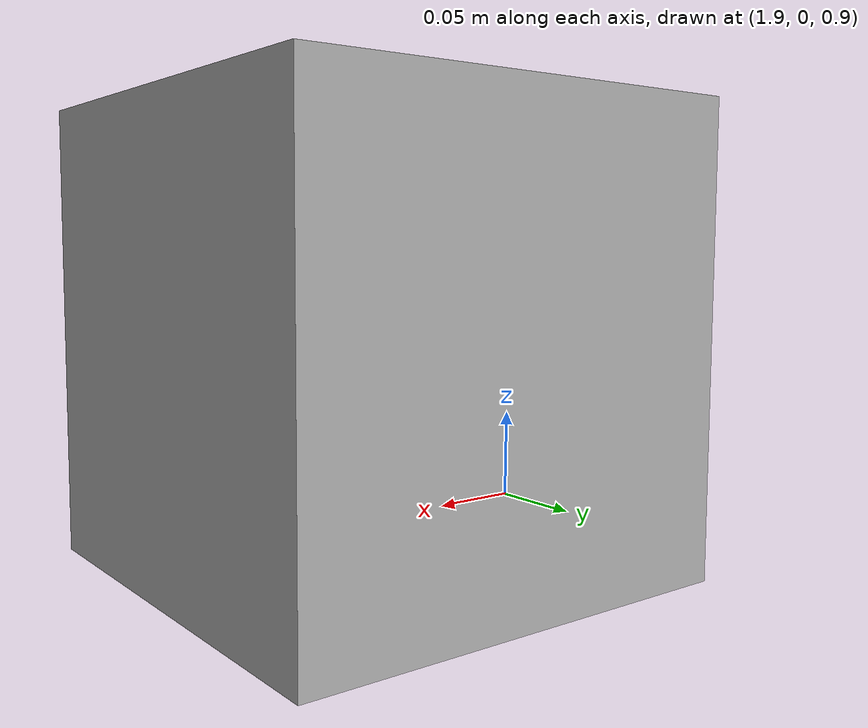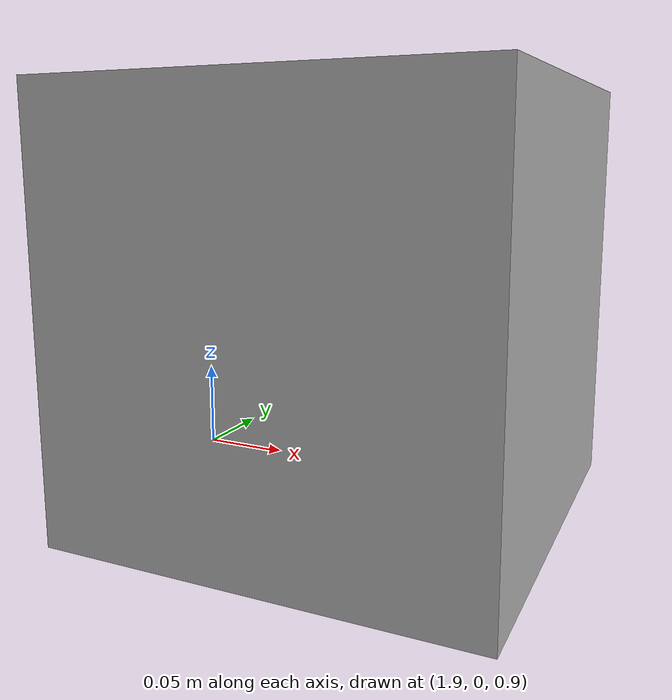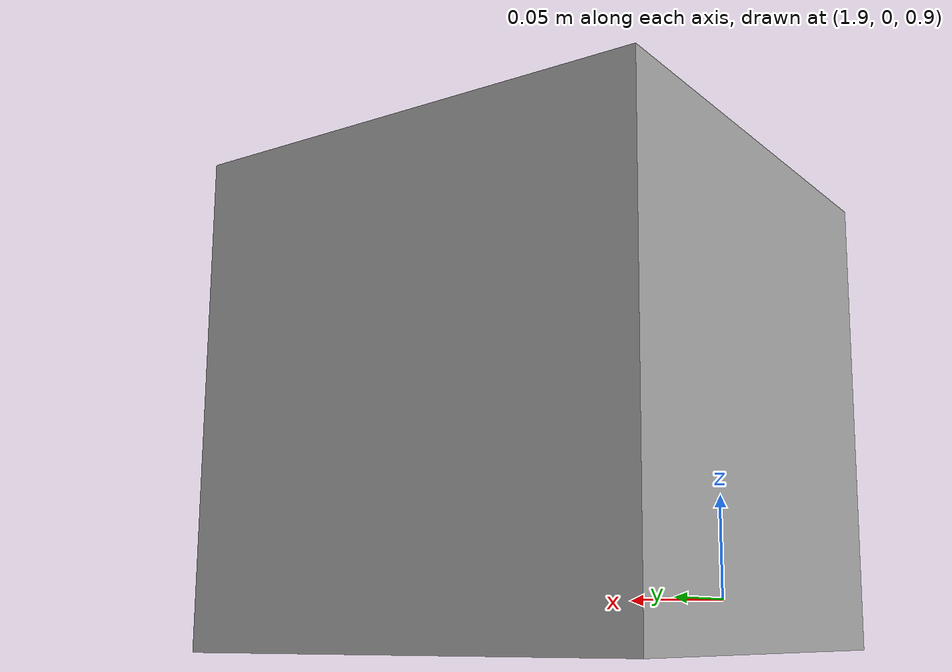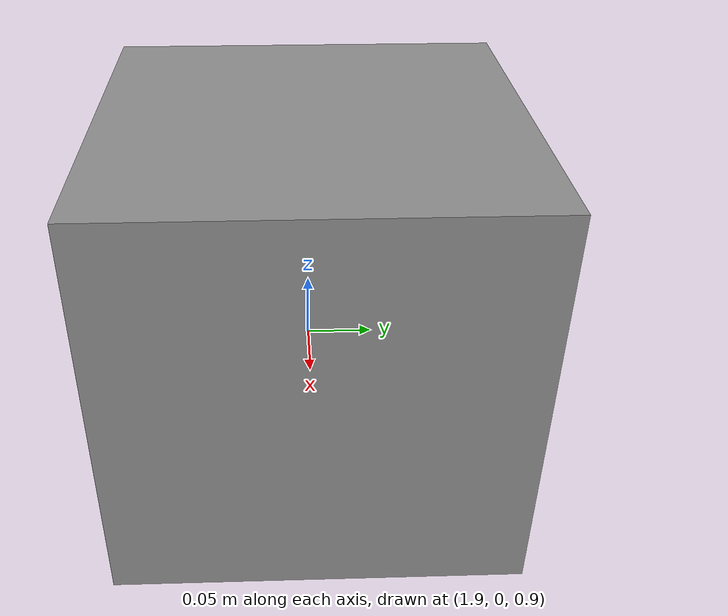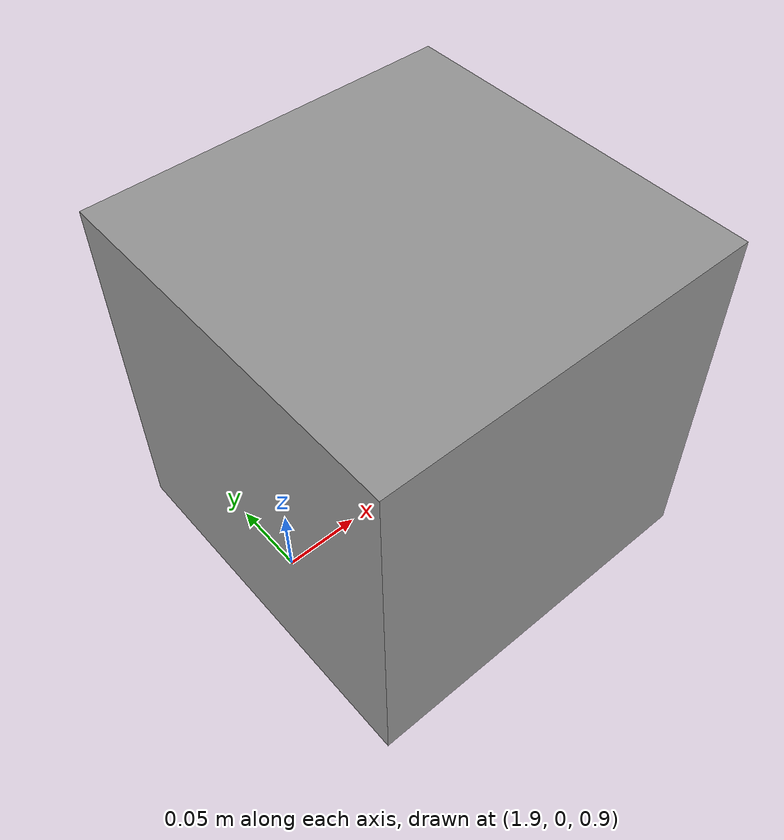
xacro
<?xml version="1.0"?>
<!-- Revolute-Revolute Manipulator -->
<robot name="rrbot" xmlns:xacro="http://www.ros.org/wiki/xacro">

  <!-- Constants for robot dimensions -->
  <xacro:property name="PI" value="3.1415926535897931"/>
  <xacro:property name="mass" value="1" />

  <xacro:property name="pos_x" value="2" />
  <xacro:property name="pos_y" value="0" />
  <xacro:property name="pos_z" value="1" />
  <xacro:property name="obj_x" value="0.25" />
  <xacro:property name="obj_y" value="0.25" />
  <xacro:property name="obj_z" value="0.25" />

  <!-- Import all Gazebo-customization elements, including Gazebo colors -->
  <xacro:include filename="$(find rrbot_description)/urdf/rrbot.gazebo" />
  <!-- Import Rviz colors -->
  <xacro:include filename="$(find rrbot_description)/urdf/materials.xacro" />

  <!-- Used for fixing robot to Gazebo 'base_link' -->
  <link name="world"/>

  <joint name="fixed" type="fixed">
    <parent link="world"/>
    <child link="link1"/>
  </joint>

  <!-- Base Link -->
  <link name="link1">
    <inertial>
      <origin xyz="0 0 0.001" rpy="0 0 0"/>
      <mass value="${mass}"/>
      <inertia
      ixx="0.0" ixy="0.0" ixz="0.0"
	  iyy="0.0" iyz="0.0"
	  izz="0.0"/>
    </inertial>
  </link>

  <joint name="joint1" type="continuous">
    <parent link="link1"/>
    <child link="link2"/>
    <origin xyz="0 0 0" rpy="0 0 0"/>
    <axis xyz="0 1 0"/>
    <dynamics damping="0.3"/>
  </joint>

  <!-- Middle Link -->
  <link name="link2">
    <inertial>
      <origin xyz="0 0 0.01" rpy="0 0 0"/>
      <mass value="${mass}"/>
      <inertia
      ixx="0.0" ixy="0.0" ixz="0.0"
	  iyy="0.0" iyz="0.0"
	  izz="0.0"/>
    </inertial>
  </link>

  <joint name="joint2" type="continuous">
    <parent link="link2"/>
    <child link="link3"/>
    <origin xyz="0 0 0" rpy="0 0 0"/>
    <axis xyz="0 0 1"/>
    <dynamics damping="0.3"/>
  </joint>

  <!-- Middle Link -->
  <link name="link3">
    <inertial>
      <origin xyz="0 0 0.01" rpy="0 0 0"/>
      <mass value="${mass}"/>
      <inertia
      ixx="0.0" ixy="0.0" ixz="0.0"
	  iyy="0.0" iyz="0.0"
	  izz="0.0"/>
    </inertial>
  </link>

  <joint name="joint3" type="continuous">
    <parent link="link3"/>
    <child link="link4"/>
    <origin xyz="${pos_x} ${pos_y} ${pos_z}" rpy="0 0 0"/>
    <axis xyz="1 0 0"/>
    <dynamics damping="0.3"/>
  </joint>

  <!-- Top Link -->
  <link name="link4">
    <inertial>
      <origin xyz="0 0 0.1" rpy="0 0 0"/>
      <mass value="${mass}"/>
      <inertia
      ixx="0.0" ixy="0.0" ixz="0.0"
	  iyy="0.0" iyz="0.0"
	  izz="0.0"/>
    </inertial>
    <visual>
      <origin xyz="0 0 0" rpy="0 0 0"/>
      <geometry>
        <box size="${obj_x} ${obj_y} ${obj_z}"/>
      </geometry>
      <material name="gray"/>
    </visual>

  </link>

  <transmission name="tran1">
    <type>transmission_interface/SimpleTransmission</type>
    <joint name="joint1">
      <hardwareInterface>hardware_interface/VelocityJointInterface</hardwareInterface>
    </joint>
    <actuator name="motor1">
      <hardwareInterface>hardware_interface/VelocityJointInterface</hardwareInterface>
      <mechanicalReduction>1</mechanicalReduction>
    </actuator>
  </transmission>

  <transmission name="tran2">
    <type>transmission_interface/SimpleTransmission</type>
    <joint name="joint2">
      <hardwareInterface>hardware_interface/VelocityJointInterface</hardwareInterface>
    </joint>
    <actuator name="motor2">
      <hardwareInterface>hardware_interface/VelocityJointInterface</hardwareInterface>
      <mechanicalReduction>1</mechanicalReduction>
    </actuator>
  </transmission>

  <transmission name="tran3">
    <type>transmission_interface/SimpleTransmission</type>
    <joint name="joint3">
      <hardwareInterface>hardware_interface/VelocityJointInterface</hardwareInterface>
    </joint>
    <actuator name="motor3">
      <hardwareInterface>hardware_interface/VelocityJointInterface</hardwareInterface>
      <mechanicalReduction>1</mechanicalReduction>
    </actuator>
  </transmission>

</robot>
